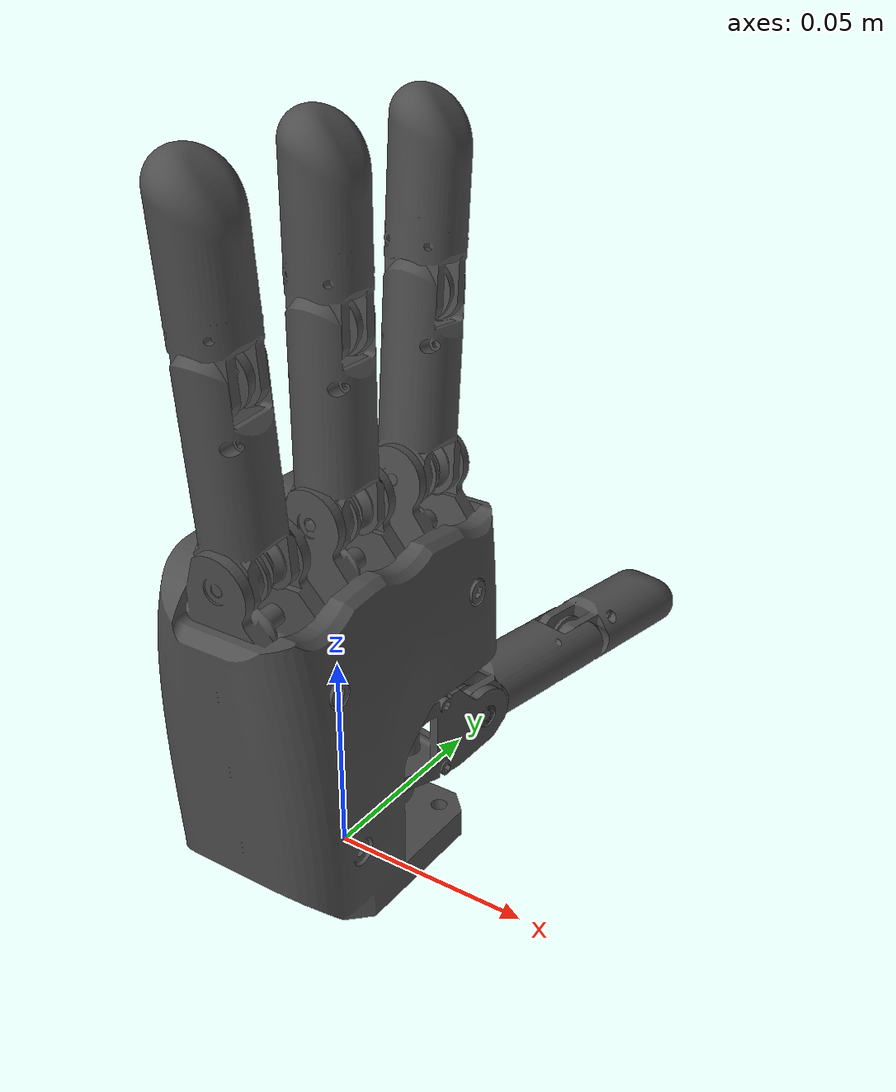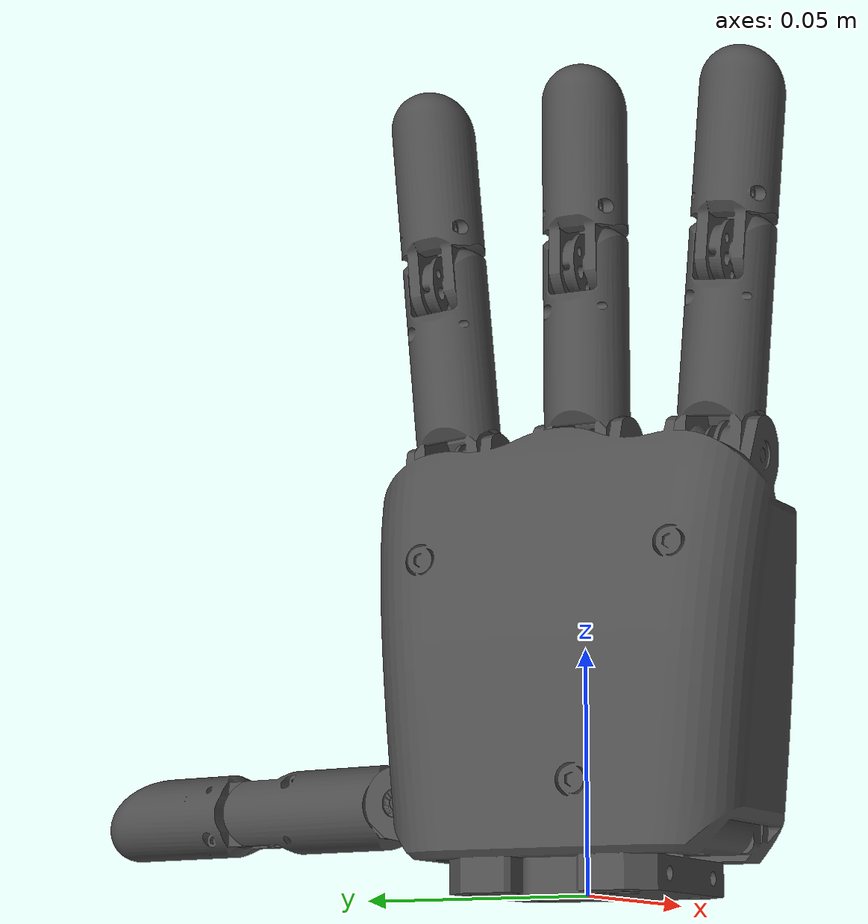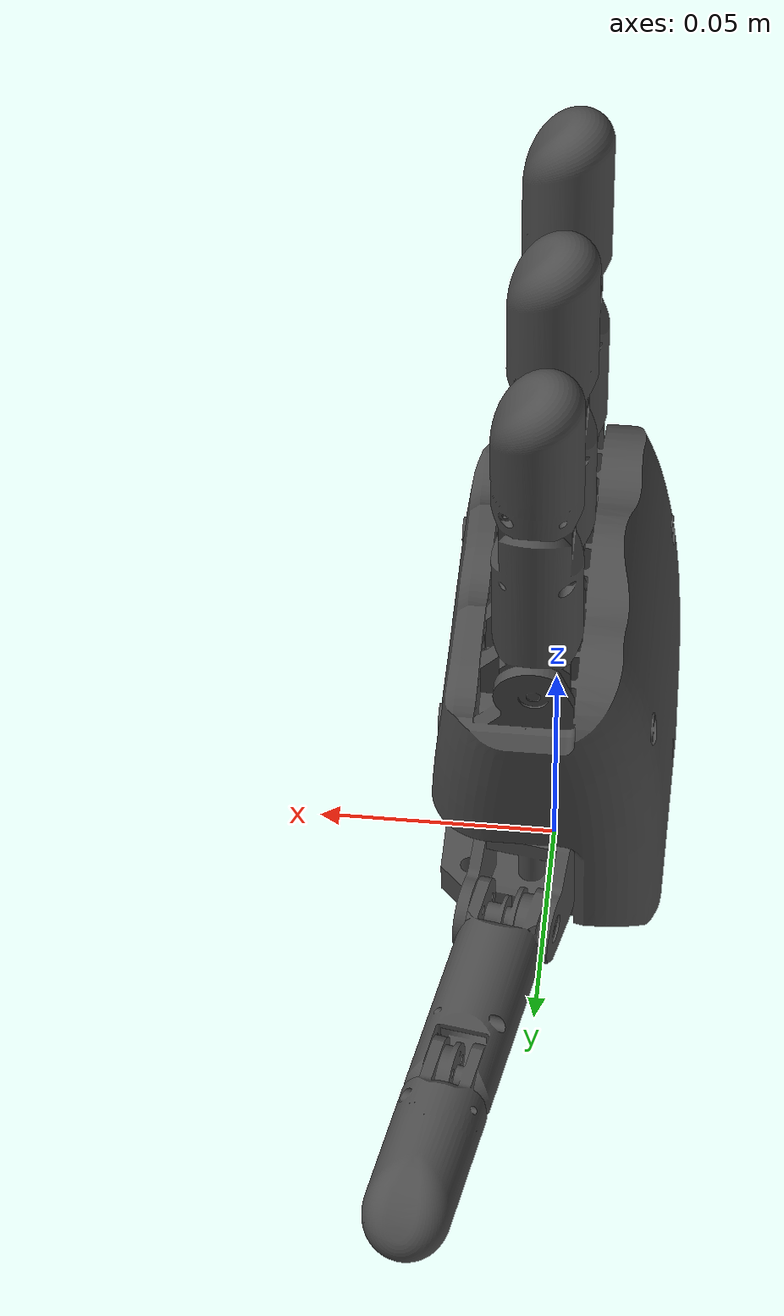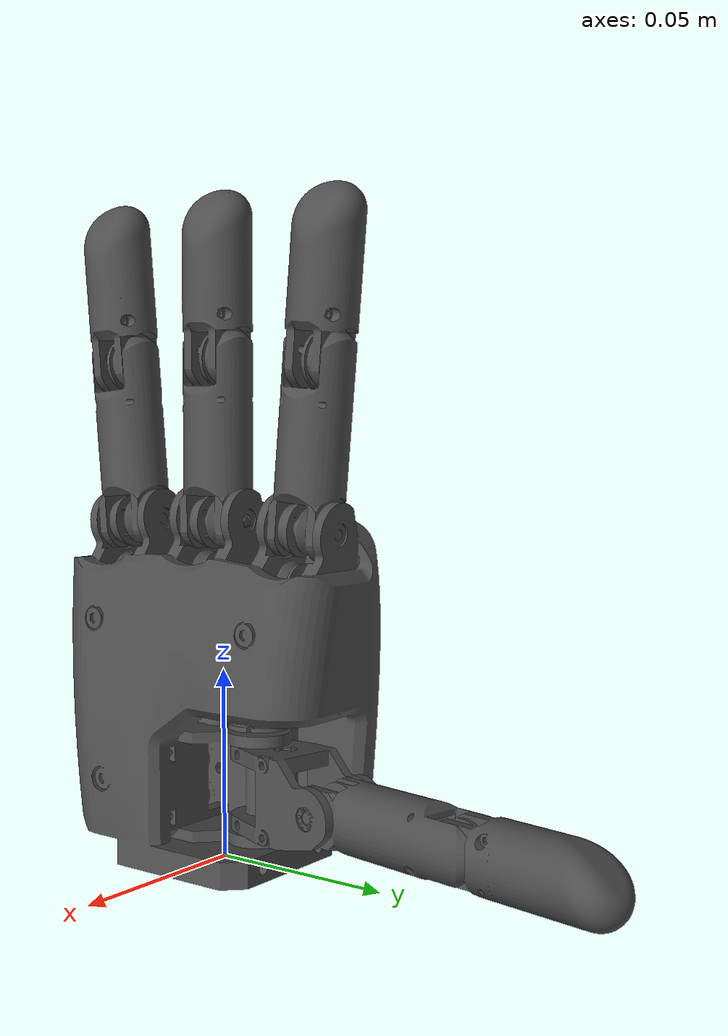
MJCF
<mujoco model="h9_R">
  <option gravity="0 0 -9.81"/>
  <compiler angle="radian" meshdir="./assets" autolimits="true"/>

  <asset>
    <texture type="skybox" builtin="gradient" rgb1="0.831 0.831 0.831" rgb2="0.9 0.9 0.9" width="512" height="3072"/>
    <material name="black" rgba="0.3 0.3 0.3 1"/>
    <material name="black_transparent" rgba="0.3 0.3 0.3 0.5"/>
    <material name="silver_transparent" rgba="1.5 1.5 1.5 0.5"/>
	<material name="transparent" rgba="0 0 0 0"/>
    <material name="grey" rgba="0.5 0.5 0.5 1"/>
    <material name="white" rgba="2 2 2 2"/>
    <material name="silver" rgba="1.3 1.3 1.3 1"/>
    <material name="green" rgba="0 1 0 1"/>

    <mesh name="base_R_mesh" file="base_R.STL"/>
    <mesh name="finger_1_mesh" file="finger_1.STL"/>
	<mesh name="finger_2_mesh" file="finger_2.STL"/>
	<mesh name="thumb_1_R_mesh" file="thumb_R_1.STL"/>
	<mesh name="thumb_2_mesh" file="thumb_2.STL"/>
	<mesh name="thumb_3_mesh" file="thumb_3.STL"/>

  </asset>

  <default>
	<default class="h9_R">
		<joint damping="0.1" frictionloss="0.05"/>
		<position kp="1"/>
		<default class="visual">
			<geom type="mesh" contype="0" conaffinity="0" group="2"/>
			<default class="base_R_visual">
				<geom mesh="base_R_mesh" material="black"/>
			</default>
			<default class="finger_1_visual">
				<geom mesh="finger_1_mesh" material="black"/>
			</default>
			<default class="finger_2_visual">
				<geom mesh="finger_2_mesh" material="black"/>
			</default>
			<default class="thumb_1_R_visual">
				<geom mesh="thumb_1_R_mesh" material="black"/>
			</default>
			<default class="thumb_2_visual">
				<geom mesh="thumb_2_mesh" material="black"/>
			</default>
			<default class="thumb_3_visual">
				<geom mesh="thumb_3_mesh" material="black"/>
			</default>
		</default>
    </default>

	<default class="collision">
		<geom group="3" contype="1" conaffinity="1" rgba="0 1 0 1"/>
	</default>
  </default>

  <worldbody>
    <body name="base" childclass="h9_R" pos="0 0 0">
      <inertial pos="0.00040462 -0.00338958 0.05274590" mass="0.5" fullinertia="0.00027563 0.00021892 0.00010237 0.00000356 -0.00000022 -0.00001408"/>
	  <geom class="collision" type="box" pos="0.022 0 0.06" size="0.0005 0.042 0.016"/>
	  <geom class="collision" type="box" pos="0.022 -0.023 0.025" size="0.0005 0.015 0.018"/>
      <geom class="base_R_visual"/>

	  <body name="finger1" pos="0.0013 0.013 0.0214" quat="0.08715574 0 0 0.99619470">
		<inertial pos="-0.00002194 -0.01217167 -0.00042063" mass="0.00494385" fullinertia="0.00000074 0.00000052 0.00000065 0 0 -0.00000002"/>
		<joint name="finger1" pos="0 0 0" type="hinge" axis="0 0 -1" damping="0.005" frictionloss="0.001"/>
		<geom class="thumb_1_R_visual"/>
		<body name="finger2" pos="0 -0.028 -0.00135">
			<inertial pos="0.00017250 -0.01864692 0.00001457" mass="0.00603964" fullinertia="0.00000147 0.00000034 0.00000154 -0.00000002 0 0"/>
			<joint name="finger2" pos="0 0 0" type="hinge" axis="-1 0 0" damping="0.005" frictionloss="0.001"/>
			<geom class="thumb_2_visual"/>
			<geom class="collision" type="capsule" size="0.009" fromto="0 0 0 0 -0.042 0"/>
			<body name="finger3" pos="0 -0.042 0">
				<inertial pos="-0.00006264 -0.01905009 0.00008436" mass="0.00761841" fullinertia="0.00000143 0.00000032 0.00000144 0.00000001 0 -0.00000002"/>
				<joint name="finger3" pos="0 0 0" type="hinge" axis="-1 0 0" damping="0.005" frictionloss="0.001"/>
				<geom class="thumb_3_visual"/>
				<geom class="collision" type="capsule" size="0.009" fromto="0 0 0 0 -0.030 0"/>
			</body>
		</body>
	  </body>

	  <body name="finger4" pos="0.0018 0.02906 0.08838" quat="0.99904822 -0.04361939 0 0">
		<inertial pos="0.00001457 -0.00017250 0.01864692" mass="0.00603964" fullinertia="0.00000154 0.00000147 0.00000034 0 0 -0.00000002"/>
		<joint name="finger4" pos="0 0 0" type="hinge" axis="0 1 0" damping="0.005" frictionloss="0.001"/>
		<geom class="finger_1_visual"/>
		<geom class="collision" type="capsule" size="0.009" fromto="0 0 0 0 0 0.042"/>
		<body name="finger5" pos="0 0 0.042">
				<inertial pos="0.00008436 0.00006264 0.01905009" mass="0.00761841" fullinertia="0.00000144 0.00000143 0.00000032 0 0.00000002 0.00000001"/>
				<joint name="finger5" pos="0 0 0" type="hinge" axis="0 1 0" damping="0.005" frictionloss="0.001"/>
				<geom class="finger_2_visual"/>
				<geom class="collision" type="capsule" size="0.009" fromto="0 0 0 0 0 0.030"/>
			</body>
	  </body>

	  <body name="finger6" pos="0.0018 0 0.08921">
		<inertial pos="0.00001457 -0.00017250 0.01864692" mass="0.00603964" fullinertia="0.00000154 0.00000147 0.00000034 0 0 -0.00000002"/>
		<joint name="finger6" pos="0 0 0" type="hinge" axis="0 1 0" damping="0.005" frictionloss="0.001"/>
		<geom class="finger_1_visual"/>
		<geom class="collision" type="capsule" size="0.009" fromto="0 0 0 0 0 0.042"/>
		<body name="finger7" pos="0 0 0.042">
				<inertial pos="0.00008436 0.00006264 0.01905009" mass="0.00761841" fullinertia="0.00000144 0.00000143 0.00000032 0 0.00000002 0.00000001"/>
				<joint name="finger7" pos="0 0 0" type="hinge" axis="0 1 0" damping="0.005" frictionloss="0.001"/>
				<geom class="finger_2_visual"/>
				<geom class="collision" type="capsule" size="0.009" fromto="0 0 0 0 0 0.030"/>
			</body>
	  </body>

	   <body name="finger8" pos="0.0018 -0.02906 0.08838" quat="0.99904822 0.04361939 0 0">
		<inertial pos="0.00001457 -0.00017250 0.01864692" mass="0.00603964" fullinertia="0.00000154 0.00000147 0.00000034 0 0 -0.00000002"/>
		<joint name="finger8" pos="0 0 0" type="hinge" axis="0 1 0" damping="0.005" frictionloss="0.001"/>
		<geom class="finger_1_visual"/>
		<geom class="collision" type="capsule" size="0.009" fromto="0 0 0 0 0 0.042"/>
		<body name="finger9" pos="0 0 0.042">
				<inertial pos="0.00008436 0.00006264 0.01905009" mass="0.00761841" fullinertia="0.00000144 0.00000143 0.00000032 0 0.00000002 0.00000001"/>
				<joint name="finger9" pos="0 0 0" type="hinge" axis="0 1 0" damping="0.005" frictionloss="0.001"/>
				<geom class="finger_2_visual"/>
				<geom class="collision" type="capsule" size="0.009" fromto="0 0 0 0 0 0.030"/>
			</body>
	  </body>

    </body>
  </worldbody>

  <actuator>
    <motor name="motor1" joint="finger1"/>
    <motor name="motor2" joint="finger2"/>
    <motor name="motor3" joint="finger3"/>
    <motor name="motor4" joint="finger4"/>
    <motor name="motor5" joint="finger5"/>
    <motor name="motor6" joint="finger6"/>
    <motor name="motor7" joint="finger7"/>
    <motor name="motor8" joint="finger8"/>
    <motor name="motor9" joint="finger9"/>
  </actuator>

  <sensor>
    <jointpos joint="finger1"/>
    <jointpos joint="finger2"/>
    <jointpos joint="finger3"/>
    <jointpos joint="finger4"/>
    <jointpos joint="finger5"/>
    <jointpos joint="finger6"/>
    <jointpos joint="finger7"/>
    <jointpos joint="finger8"/>
    <jointpos joint="finger9"/>
    <jointvel joint="finger1"/>
    <jointvel joint="finger2"/>
    <jointvel joint="finger3"/>
    <jointvel joint="finger4"/>
    <jointvel joint="finger5"/>
    <jointvel joint="finger6"/>
    <jointvel joint="finger7"/>
    <jointvel joint="finger8"/>
    <jointvel joint="finger9"/>
  </sensor>

</mujoco>
